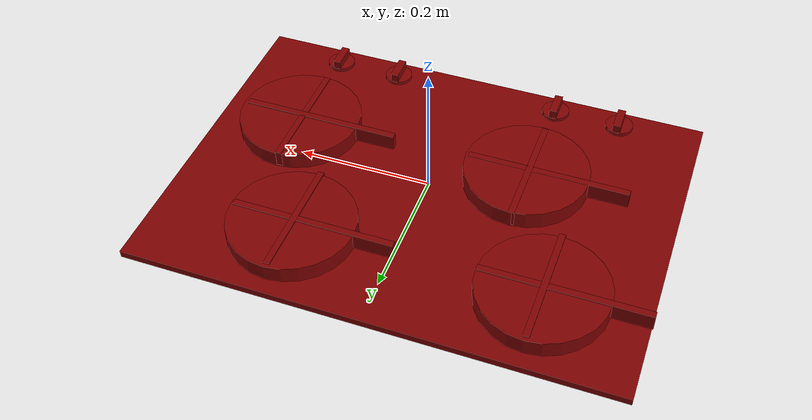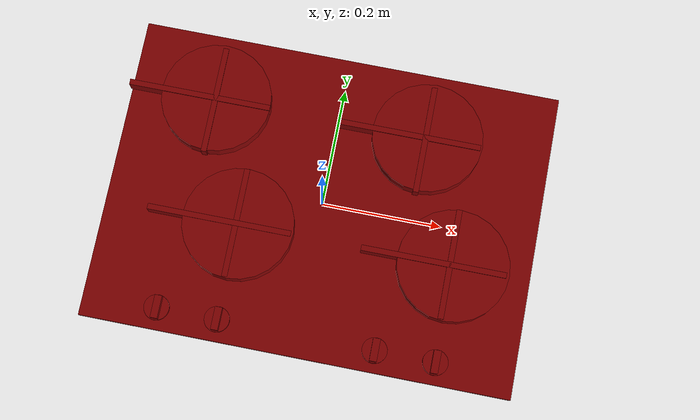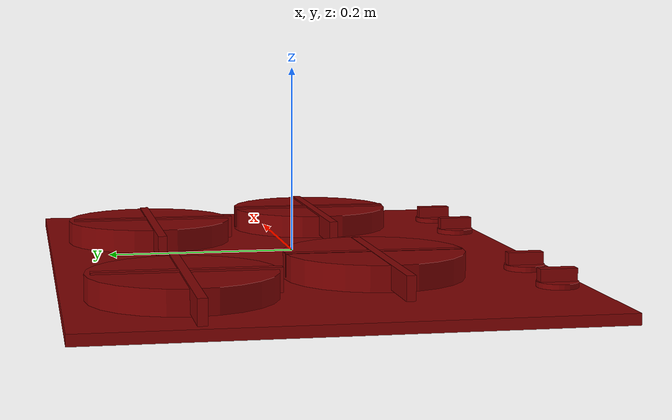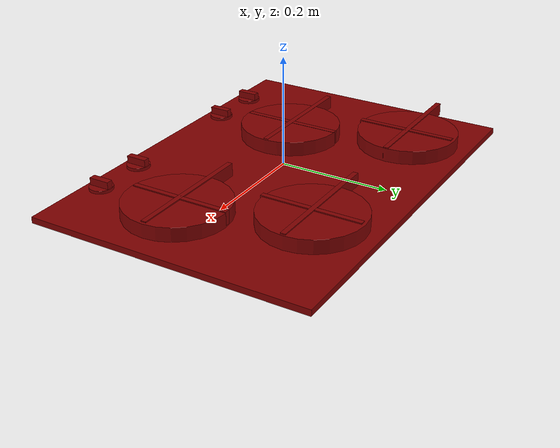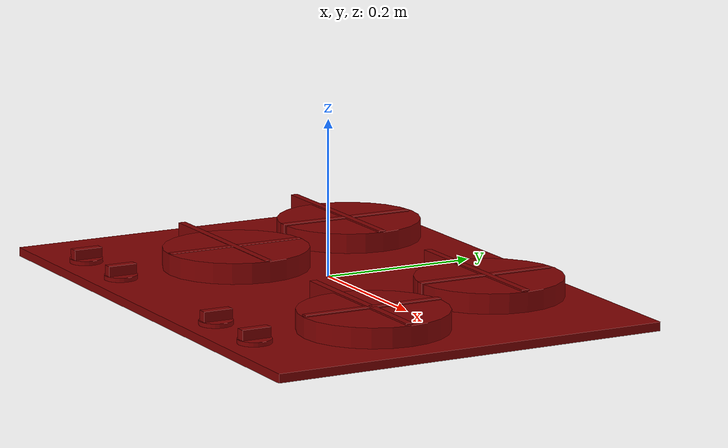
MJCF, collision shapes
<?xml version='1.0' encoding='UTF-8'?>
<mujoco model="model">
  <compiler angle="radian"/>
  <asset>
    <mesh file="visuals/knob_front_left.obj" name="knob_front_left_vis"/>
    <mesh file="visuals/knob_front_right.obj" name="knob_front_right_vis"/>
    <mesh file="visuals/knob_rear_left.obj" name="knob_rear_left_vis"/>
    <mesh file="visuals/knob_rear_right.obj" name="knob_rear_right_vis"/>
    <mesh file="visuals/Body001.obj" name="Body001_vis"/>
    <texture file="visuals/T_BC001.png" name="Body001_material" type="2d"/>
    <material name="Body001_material" rgba="1 1 1 1.0" texture="Body001_material" shininess="2" specular="3"/>
    <texture file="visuals/T_BC001.png" name="knob_front_left_material" type="2d"/>
    <material name="knob_front_left_material" rgba="1 1 1 1.0" texture="knob_front_left_material" shininess="0.4472135901451111" specular="3"/>
    <texture file="visuals/T_BC001.png" name="knob_front_right_material" type="2d"/>
    <material name="knob_front_right_material" rgba="1 1 1 1.0" texture="knob_front_right_material" shininess="0.4472135901451111" specular="3"/>
    <texture file="visuals/T_BC001.png" name="knob_rear_left_material" type="2d"/>
    <material name="knob_rear_left_material" rgba="1 1 1 1.0" texture="knob_rear_left_material" shininess="0.4472135901451111" specular="3"/>
    <texture file="visuals/T_BC001.png" name="knob_rear_right_material" type="2d"/>
    <material name="knob_rear_right_material" rgba="1 1 1 1.0" texture="knob_rear_right_material" shininess="0.4472135901451111" specular="3"/>
  </asset>
  <default>
    <default class="visual">
      <geom conaffinity="0" contype="0" group="1" type="mesh"/>
    </default>
    <default class="collision">
      <geom group="0" rgba="0.5 0 0 0.5"/>
    </default>
    <default class="spawn">
      <geom group="0" rgba="1 1 1 0.5" contype="0" conaffinity="0"/>
      <site group="0" rgba="1 1 1 0.5"/>
    </default>
    <default class="region">
      <geom group="1" conaffinity="0" contype="0" rgba="0 1 0 0"/>
    </default>
  </default>
  <worldbody>
    <body>
      <body name="object">
        <site type="cylinder" rgba="0.3 0.4 1 0.5" size="0.0414312519133091 0.004678682424128056" pos="-0.134285 -0.063578 0.003415" name="burner_on_front_left"/>
        <site type="cylinder" rgba="0.3 0.4 1 0.5" size="0.05582449957728386 0.005081477575004101" pos="-0.212017 0.141348 0.003414" name="burner_on_rear_left"/>
        <site type="cylinder" rgba="0.3 0.4 1 0.5" size="0.04258672893047333 0.004880968946963549" pos="0.148367 0.141349 0.003335" name="burner_on_rear_right"/>
        <site type="cylinder" rgba="0.3 0.4 1 0.5" size="0.028938956558704376 0.004493071231991053" pos="0.228893 -0.064366 0.004060" name="burner_on_front_right"/>
        <geom mesh="Body001_vis" type="mesh" solimp="0.998 0.998 0.001" solref="0.001 1" density="100" friction="0.95 0.3 0.1" class="visual" material="Body001_material"/>
        <geom class="collision" type="box" pos="0.001079 0.000782 -0.014137" size="0.36089783906936646 0.259036660194397 0.00560992956161499" quat="1.0 0.0 0.0 0.0"/>
        <geom class="collision" type="cylinder" pos="-0.130427 -0.061943 0.005184" size="0.09358371049165726 0.013320677913725376" quat="1.0 0.0 0.0 0.0"/>
        <geom class="collision" type="cylinder" pos="-0.211802 0.143724 0.003630" size="0.09358371049165726 0.013320677913725376" quat="1.0 0.0 0.0 0.0"/>
        <geom class="collision" type="cylinder" pos="0.151510 0.143724 0.003630" size="0.09358371049165726 0.013320677913725376" quat="1.0 0.0 0.0 0.0"/>
        <geom class="collision" type="cylinder" pos="0.231105 -0.062324 0.003630" size="0.09358371049165726 0.013320677913725376" quat="1.0 0.0 0.0 0.0"/>
        <geom class="collision" type="box" pos="0.225469 -0.061079 0.006637" size="0.004755941219627857 0.09217243641614914 0.012272467836737633" quat="1.0 0.0 0.0 0.0"/>
        <geom class="collision" type="box" pos="-0.134046 -0.061079 0.006637" size="0.0047559430822730064 0.09217249602079391 0.01227247342467308" quat="1.0 0.0 0.0 0.0"/>
        <geom class="collision" type="box" pos="-0.212877 0.139288 0.006637" size="0.004755944944918156 0.0921725481748581 0.012272479943931103" quat="1.0 0.0 0.0 0.0"/>
        <geom class="collision" type="box" pos="0.148378 0.139288 0.006637" size="0.004755946807563305 0.09217260032892227 0.01227248553186655" quat="1.0 0.0 0.0 0.0"/>
        <geom class="collision" type="box" pos="0.120605 0.142376 0.006637" size="0.12127182632684708 0.00475597707554698 0.012272515334188938" quat="1.0 0.0 0.0 0.0"/>
        <geom class="collision" type="box" pos="-0.240233 0.142376 0.006637" size="0.12127182632684708 0.00475597707554698 0.012272515334188938" quat="1.0 0.0 0.0 0.0"/>
        <geom class="collision" type="box" pos="-0.162432 -0.062391 0.006637" size="0.12127182632684708 0.00475597707554698 0.012272515334188938" quat="1.0 0.0 0.0 0.0"/>
        <geom class="collision" type="box" pos="0.198100 -0.062391 0.006637" size="0.12127182632684708 0.00475597707554698 0.012272515334188938" quat="1.0 0.0 0.0 0.0"/>
        <body name="knob_front_left">
          <joint axis="0.0 0.0 1.0" pos="-0.233478 -0.222203 0.000999" limited="true" name="knob_front_left_joint" range="0.0 3.141592653589793" type="hinge" damping="0.05" armature="0.001"/>
          <geom mesh="knob_front_left_vis" type="mesh" solimp="0.998 0.998 0.001" solref="0.001 1" density="100" friction="0.95 0.3 0.1" class="visual" material="knob_front_left_material"/>
          <geom class="collision" type="cylinder" pos="-0.234490 -0.222332 -0.002667" size="0.02115575224161148 0.002754976972937584" quat="1.0 0.0 0.0 0.0"/>
          <geom class="collision" type="box" pos="-0.233392 -0.222313 0.006376" size="0.00605419185012579 0.019009480252861977 0.006694527342915535" quat="1.0 0.0 0.0 0.0"/>
        </body>
        <body name="knob_front_right">
          <joint axis="0.0 0.0 1.0" pos="0.231286 -0.222203 0.000999" limited="true" name="knob_front_right_joint" range="0.0 3.141592653589793" type="hinge" damping="0.05" armature="0.001"/>
          <geom mesh="knob_front_right_vis" type="mesh" solimp="0.998 0.998 0.001" solref="0.001 1" density="100" friction="0.95 0.3 0.1" class="visual" material="knob_front_right_material"/>
          <geom class="collision" type="cylinder" pos="0.231029 -0.222332 -0.002667" size="0.02115575224161148 0.002754976972937584" quat="1.0 0.0 0.0 0.0"/>
          <geom class="collision" type="box" pos="0.230868 -0.222313 0.006376" size="0.0060541993007063866 0.019009524956345558 0.006694551557302475" quat="1.0 0.0 0.0 0.0"/>
        </body>
        <body name="knob_rear_left">
          <joint axis="0.0 0.0 1.0" pos="-0.132543 -0.222203 0.000999" limited="true" name="knob_rear_left_joint" range="0.0 3.141592653589793" type="hinge" damping="0.05" armature="0.001"/>
          <geom mesh="knob_rear_left_vis" type="mesh" solimp="0.998 0.998 0.001" solref="0.001 1" density="100" friction="0.95 0.3 0.1" class="visual" material="knob_rear_left_material"/>
          <geom class="collision" type="cylinder" pos="-0.133001 -0.222332 -0.002667" size="0.02115575224161148 0.002754976972937584" quat="1.0 0.0 0.0 0.0"/>
          <geom class="collision" type="box" pos="-0.132615 -0.222313 0.006376" size="0.006054195575416088 0.019009502604603767 0.006694539450109005" quat="1.0 0.0 0.0 0.0"/>
        </body>
        <body name="knob_rear_right">
          <joint axis="0.0 0.0 1.0" pos="0.130352 -0.222203 0.000999" limited="true" name="knob_rear_right_joint" range="0.0 3.141592653589793" type="hinge" damping="0.05" armature="0.001"/>
          <geom mesh="knob_rear_right_vis" type="mesh" solimp="0.998 0.998 0.001" solref="0.001 1" density="100" friction="0.95 0.3 0.1" class="visual" material="knob_rear_right_material"/>
          <geom class="collision" type="cylinder" pos="0.130276 -0.222332 -0.002667" size="0.02115575224161148 0.002754976972937584" quat="1.0 0.0 0.0 0.0"/>
          <geom class="collision" type="box" pos="0.130430 -0.222313 0.006376" size="0.006054202560335398 0.01900954730808735 0.006694563198834658" quat="1.0 0.0 0.0 0.0"/>
        </body>
        <geom class="region" name="reg_main" type="box" pos="0.0011259999999999881 0.0 -0.013079" size="0.360673 0.259706 0.004972000000000001"/>
      </body>
    </body>
  </worldbody>
  <actuator>
    <motor name="knob_front_left_joint_actuator" joint="knob_front_left_joint" gear="10"/>
    <motor name="knob_front_right_joint_actuator" joint="knob_front_right_joint" gear="10"/>
    <motor name="knob_rear_left_joint_actuator" joint="knob_rear_left_joint" gear="10"/>
    <motor name="knob_rear_right_joint_actuator" joint="knob_rear_right_joint" gear="10"/>
  </actuator>
</mujoco>
